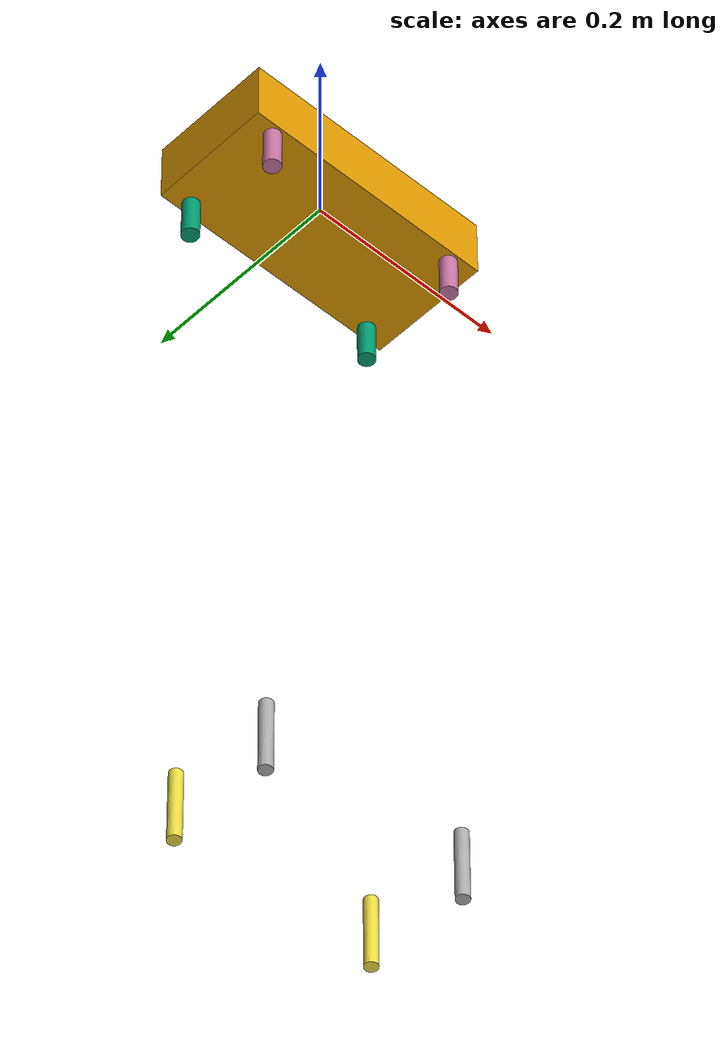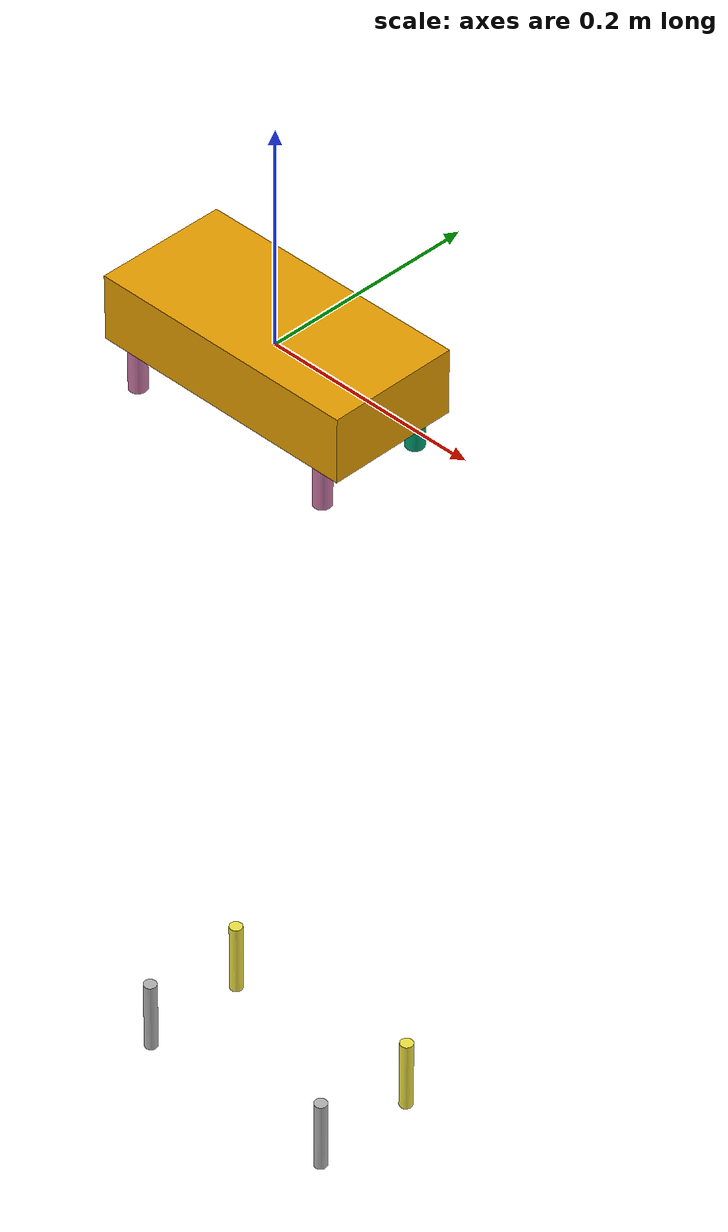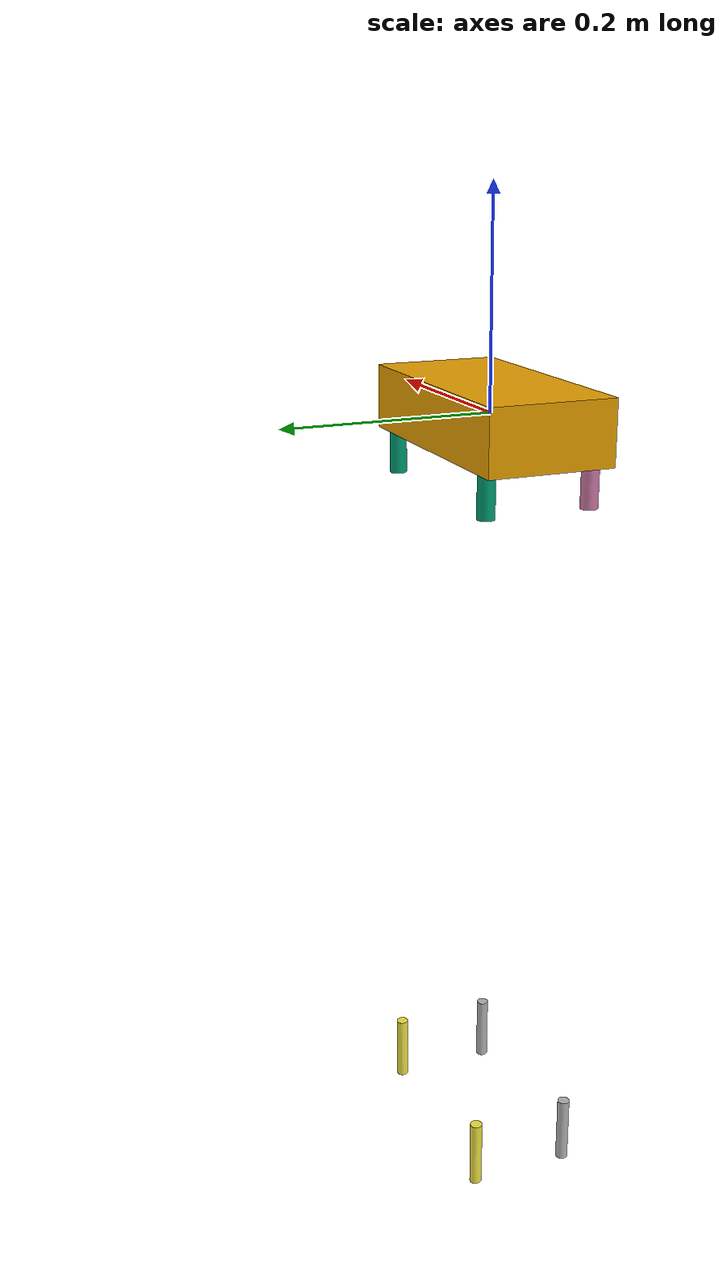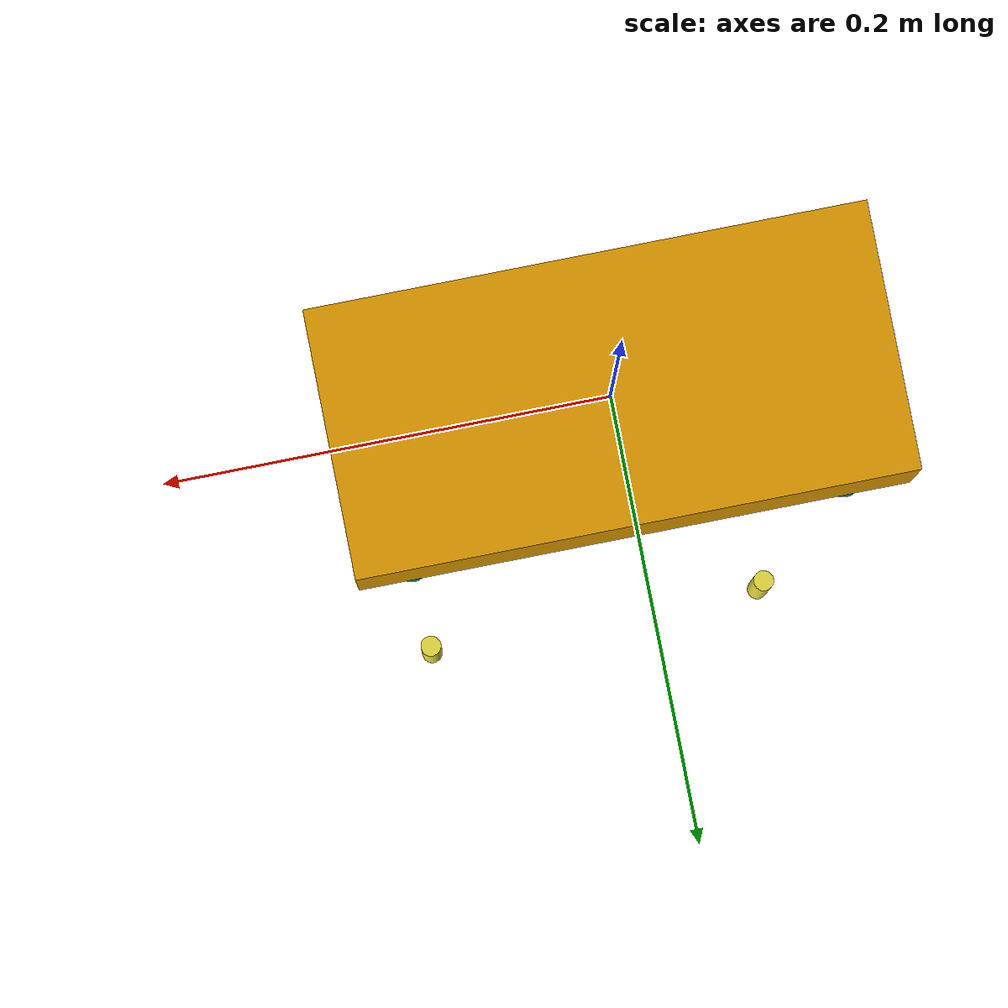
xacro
<?xml version="1.0"?>

<robot xmlns:xacro="http://ros.org/wiki/xacro" name="rospug">
    <xacro:arg name="hardware" default="mock" />
    <xacro:arg name="servo_config" default="" />
    <xacro:property name="hardware" value="$(arg hardware)" />

    <link name="base_link">
        <visual>
            <geometry>
                <box size="0.25 0.12 0.06" />
            </geometry>
        </visual>
    </link>

    <!-- Placeholder leg: HAA (Hip ab/ad), HFE (hip flexion), KFE (knee). -->
    <xacro:macro name="leg" params="prefix x y">
        <link name="${prefix}_hip"/>

        <link name="${prefix}_thigh">
            <visual>
                <origin xyz="0 0 -0.035"/>
                <geometry>
                    <cylinder radius="0.008" length="0.07"/>
                </geometry>
            </visual>
        </link>

        <link name="${prefix}_shank">
            <visual>
                <origin xyz="0 0 -0.035"/>
                <geometry>
                    <cylinder radius="0.006" length="0.07"/>
                </geometry>
            </visual>
        </link>

        <link name="${prefix}_foot"/>

        <joint name="${prefix}_HAA" type="revolute">
            <parent link="base_link"/>
            <child link="${prefix}_hip"/>
            <origin xyz="${x} ${y} 0"/>
            <axis xyz="1 0 0"/>
            <limit lower="-0.5" upper="0.5" effort="3.0" velocity="6.0"/>
        </joint>

        <joint name="${prefix}_HFE" type="revolute">
            <parent link="${prefix}_hip"/>
            <child link="${prefix}_thigh"/>
            <axis xyz="0 1 0"/>
            <limit lower="-1.2" upper="1.2" effort="3.0" velocity="6.0"/>
        </joint>

        <joint name="${prefix}_KFE" type="revolute">
            <parent link="${prefix}_thigh"/>
            <child link="${prefix}_shank"/>
            <origin xyz="0.0 0.0 -0.7"/>
            <axis xyz="0 1 0"/>
            <limit lower="-2.4" upper="2.4" effort="3.0" velocity="6.0"/>
        </joint>

        <joint name="${prefix}_foot_fixed" type="fixed">
            <parent link="${prefix}_shank"/>
            <child link="${prefix}_foot"/>
            <origin xyz="0.0 0.0 -0.7"/>
        </joint>

    </xacro:macro>

    <xacro:leg prefix="LF" x="0.10" y="0.05"/>
    <xacro:leg prefix="RF" x="0.10" y="-0.05"/>
    <xacro:leg prefix="LH" x="-0.10" y="0.05"/>
    <xacro:leg prefix="RH" x="-0.10" y="-0.05"/>

    <xacro:include filename="$(find pug_description)/urdf/pug.ros2_control.xacro"/>
</robot>
